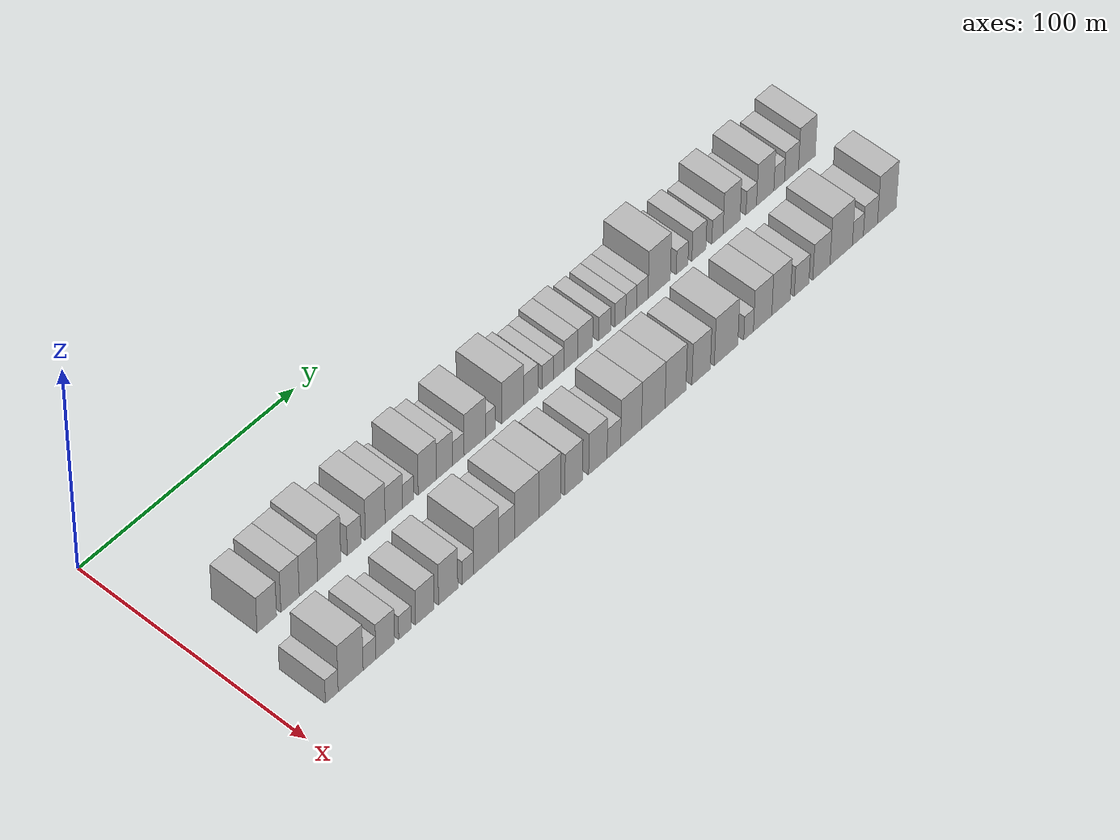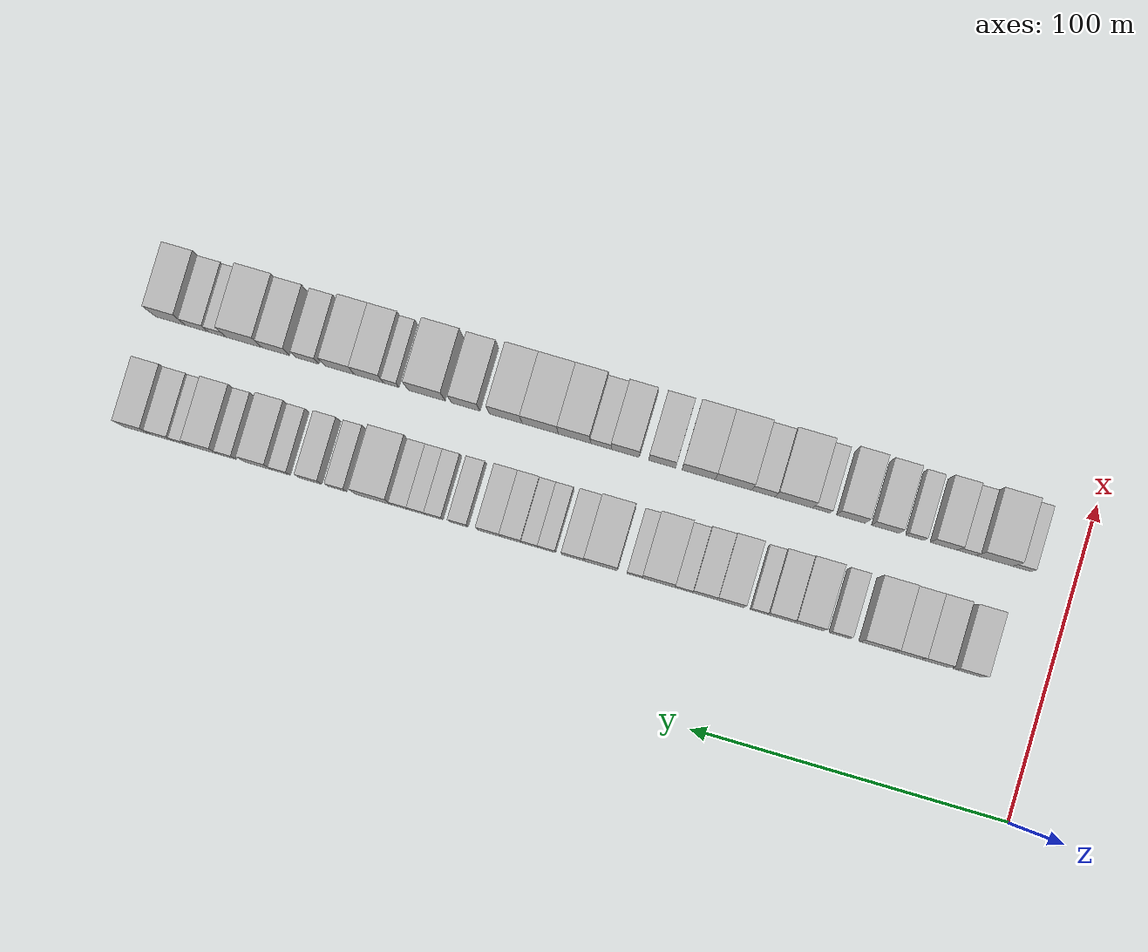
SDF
<sdf version="1.6">
 <world name="default">
  <model name="building_31">
   <static>1</static>
   <pose>50.0000 24.1749 0 0.000000 0.000000 0.000000</pose>
   <link name="link">
    <pose>0 0 9.00 0 0 0</pose>
    <collision name="collision"><geometry><box><size>20.0000 8.9537 18.0000</size></box></geometry></collision>
    <visual name="visual">
     <cast_shadows>0</cast_shadows>
     <geometry><box><size>20.0000 8.9537 18.0000</size></box></geometry>
     <material>
      <script>
       <uri>model://HANNAS_wall/materials/scripts</uri>
       <uri>model://HANNAS_wall/materials/textures</uri>
       <name>vrc/HANNAS_wall</name>
      </script>
     </material>
    </visual>
   </link>
  </model>
  <model name="building_32">
   <static>1</static>
   <pose>50.0000 34.8956 0 0.000000 0.000000 0.000000</pose>
   <link name="link">
    <pose>0 0 10.50 0 0 0</pose>
    <collision name="collision"><geometry><box><size>20.0000 8.4877 21.0000</size></box></geometry></collision>
    <visual name="visual">
     <cast_shadows>0</cast_shadows>
     <geometry><box><size>20.0000 8.4877 21.0000</size></box></geometry>
     <material>
      <script>
       <uri>model://HANNAS_wall/materials/scripts</uri>
       <uri>model://HANNAS_wall/materials/textures</uri>
       <name>vrc/HANNAS_wall</name>
      </script>
     </material>
    </visual>
   </link>
  </model>
  <model name="building_33">
   <static>1</static>
   <pose>50.0000 43.4149 0 0.000000 0.000000 0.000000</pose>
   <link name="link">
    <pose>0 0 10.50 0 0 0</pose>
    <collision name="collision"><geometry><box><size>20.0000 8.5508 21.0000</size></box></geometry></collision>
    <visual name="visual">
     <cast_shadows>0</cast_shadows>
     <geometry><box><size>20.0000 8.5508 21.0000</size></box></geometry>
     <material>
      <script>
       <uri>model://HANNAS_wall/materials/scripts</uri>
       <uri>model://HANNAS_wall/materials/textures</uri>
       <name>vrc/HANNAS_wall</name>
      </script>
     </material>
    </visual>
   </link>
  </model>
  <model name="building_34">
   <static>1</static>
   <pose>50.0000 53.0832 0 0.000000 0.000000 0.000000</pose>
   <link name="link">
    <pose>0 0 12.00 0 0 0</pose>
    <collision name="collision"><geometry><box><size>20.0000 10.7860 24.0000</size></box></geometry></collision>
    <visual name="visual">
     <cast_shadows>0</cast_shadows>
     <geometry><box><size>20.0000 10.7860 24.0000</size></box></geometry>
     <material>
      <script>
       <uri>model://HANNAS_wall/materials/scripts</uri>
       <uri>model://HANNAS_wall/materials/textures</uri>
       <name>vrc/HANNAS_wall</name>
      </script>
     </material>
    </visual>
   </link>
  </model>
  <model name="building_35">
   <static>1</static>
   <pose>50.0000 64.6992 0 0.000000 0.000000 0.000000</pose>
   <link name="link">
    <pose>0 0 7.50 0 0 0</pose>
    <collision name="collision"><geometry><box><size>20.0000 6.4458 15.0000</size></box></geometry></collision>
    <visual name="visual">
     <cast_shadows>0</cast_shadows>
     <geometry><box><size>20.0000 6.4458 15.0000</size></box></geometry>
     <material>
      <script>
       <uri>model://HANNAS_wall/materials/scripts</uri>
       <uri>model://HANNAS_wall/materials/textures</uri>
       <name>vrc/HANNAS_wall</name>
      </script>
     </material>
    </visual>
   </link>
  </model>
  <model name="building_36">
   <static>1</static>
   <pose>50.0000 74.5765 0 0.000000 0.000000 0.000000</pose>
   <link name="link">
    <pose>0 0 10.50 0 0 0</pose>
    <collision name="collision"><geometry><box><size>20.0000 9.3089 21.0000</size></box></geometry></collision>
    <visual name="visual">
     <cast_shadows>0</cast_shadows>
     <geometry><box><size>20.0000 9.3089 21.0000</size></box></geometry>
     <material>
      <script>
       <uri>model://HANNAS_wall/materials/scripts</uri>
       <uri>model://HANNAS_wall/materials/textures</uri>
       <name>vrc/HANNAS_wall</name>
      </script>
     </material>
    </visual>
   </link>
  </model>
  <model name="building_37">
   <static>1</static>
   <pose>50.0000 83.3503 0 0.000000 0.000000 0.000000</pose>
   <link name="link">
    <pose>0 0 9.00 0 0 0</pose>
    <collision name="collision"><geometry><box><size>20.0000 8.2386 18.0000</size></box></geometry></collision>
    <visual name="visual">
     <cast_shadows>0</cast_shadows>
     <geometry><box><size>20.0000 8.2386 18.0000</size></box></geometry>
     <material>
      <script>
       <uri>model://HANNAS_wall/materials/scripts</uri>
       <uri>model://HANNAS_wall/materials/textures</uri>
       <name>vrc/HANNAS_wall</name>
      </script>
     </material>
    </visual>
   </link>
  </model>
  <model name="building_38">
   <static>1</static>
   <pose>50.0000 90.1507 0 0.000000 0.000000 0.000000</pose>
   <link name="link">
    <pose>0 0 6.00 0 0 0</pose>
    <collision name="collision"><geometry><box><size>20.0000 5.3623 12.0000</size></box></geometry></collision>
    <visual name="visual">
     <cast_shadows>0</cast_shadows>
     <geometry><box><size>20.0000 5.3623 12.0000</size></box></geometry>
     <material>
      <script>
       <uri>model://HANNAS_wall/materials/scripts</uri>
       <uri>model://HANNAS_wall/materials/textures</uri>
       <name>vrc/HANNAS_wall</name>
      </script>
     </material>
    </visual>
   </link>
  </model>
  <model name="building_39">
   <static>1</static>
   <pose>50.0000 99.1289 0 0.000000 0.000000 0.000000</pose>
   <link name="link">
    <pose>0 0 10.50 0 0 0</pose>
    <collision name="collision"><geometry><box><size>20.0000 8.5942 21.0000</size></box></geometry></collision>
    <visual name="visual">
     <cast_shadows>0</cast_shadows>
     <geometry><box><size>20.0000 8.5942 21.0000</size></box></geometry>
     <material>
      <script>
       <uri>model://HANNAS_wall/materials/scripts</uri>
       <uri>model://HANNAS_wall/materials/textures</uri>
       <name>vrc/HANNAS_wall</name>
      </script>
     </material>
    </visual>
   </link>
  </model>
  <model name="building_40">
   <static>1</static>
   <pose>50.0000 107.2509 0 0.000000 0.000000 0.000000</pose>
   <link name="link">
    <pose>0 0 9.00 0 0 0</pose>
    <collision name="collision"><geometry><box><size>20.0000 7.6497 18.0000</size></box></geometry></collision>
    <visual name="visual">
     <cast_shadows>0</cast_shadows>
     <geometry><box><size>20.0000 7.6497 18.0000</size></box></geometry>
     <material>
      <script>
       <uri>model://HANNAS_wall/materials/scripts</uri>
       <uri>model://HANNAS_wall/materials/textures</uri>
       <name>vrc/HANNAS_wall</name>
      </script>
     </material>
    </visual>
   </link>
  </model>
  <model name="building_41">
   <static>1</static>
   <pose>50.0000 113.9115 0 0.000000 0.000000 0.000000</pose>
   <link name="link">
    <pose>0 0 6.00 0 0 0</pose>
    <collision name="collision"><geometry><box><size>20.0000 5.6714 12.0000</size></box></geometry></collision>
    <visual name="visual">
     <cast_shadows>0</cast_shadows>
     <geometry><box><size>20.0000 5.6714 12.0000</size></box></geometry>
     <material>
      <script>
       <uri>model://HANNAS_wall/materials/scripts</uri>
       <uri>model://HANNAS_wall/materials/textures</uri>
       <name>vrc/HANNAS_wall</name>
      </script>
     </material>
    </visual>
   </link>
  </model>
  <model name="building_42">
   <static>1</static>
   <pose>50.0000 121.8345 0 0.000000 0.000000 0.000000</pose>
   <link name="link">
    <pose>0 0 10.50 0 0 0</pose>
    <collision name="collision"><geometry><box><size>20.0000 10.1746 21.0000</size></box></geometry></collision>
    <visual name="visual">
     <cast_shadows>0</cast_shadows>
     <geometry><box><size>20.0000 10.1746 21.0000</size></box></geometry>
     <material>
      <script>
       <uri>model://HANNAS_wall/materials/scripts</uri>
       <uri>model://HANNAS_wall/materials/textures</uri>
       <name>vrc/HANNAS_wall</name>
      </script>
     </material>
    </visual>
   </link>
  </model>
  <model name="building_43">
   <static>1</static>
   <pose>50.0000 129.3397 0 0.000000 0.000000 0.000000</pose>
   <link name="link">
    <pose>0 0 6.00 0 0 0</pose>
    <collision name="collision"><geometry><box><size>20.0000 4.8359 12.0000</size></box></geometry></collision>
    <visual name="visual">
     <cast_shadows>0</cast_shadows>
     <geometry><box><size>20.0000 4.8359 12.0000</size></box></geometry>
     <material>
      <script>
       <uri>model://HANNAS_wall/materials/scripts</uri>
       <uri>model://HANNAS_wall/materials/textures</uri>
       <name>vrc/HANNAS_wall</name>
      </script>
     </material>
    </visual>
   </link>
  </model>
  <model name="building_44">
   <static>1</static>
   <pose>50.0000 139.9928 0 0.000000 0.000000 0.000000</pose>
   <link name="link">
    <pose>0 0 10.50 0 0 0</pose>
    <collision name="collision"><geometry><box><size>20.0000 10.4704 21.0000</size></box></geometry></collision>
    <visual name="visual">
     <cast_shadows>0</cast_shadows>
     <geometry><box><size>20.0000 10.4704 21.0000</size></box></geometry>
     <material>
      <script>
       <uri>model://HANNAS_wall/materials/scripts</uri>
       <uri>model://HANNAS_wall/materials/textures</uri>
       <name>vrc/HANNAS_wall</name>
      </script>
     </material>
    </visual>
   </link>
  </model>
  <model name="building_45">
   <static>1</static>
   <pose>50.0000 148.7830 0 0.000000 0.000000 0.000000</pose>
   <link name="link">
    <pose>0 0 7.50 0 0 0</pose>
    <collision name="collision"><geometry><box><size>20.0000 7.1100 15.0000</size></box></geometry></collision>
    <visual name="visual">
     <cast_shadows>0</cast_shadows>
     <geometry><box><size>20.0000 7.1100 15.0000</size></box></geometry>
     <material>
      <script>
       <uri>model://HANNAS_wall/materials/scripts</uri>
       <uri>model://HANNAS_wall/materials/textures</uri>
       <name>vrc/HANNAS_wall</name>
      </script>
     </material>
    </visual>
   </link>
  </model>
  <model name="building_46">
   <static>1</static>
   <pose>50.0000 157.1100 0 0.000000 0.000000 0.000000</pose>
   <link name="link">
    <pose>0 0 6.00 0 0 0</pose>
    <collision name="collision"><geometry><box><size>20.0000 5.5440 12.0000</size></box></geometry></collision>
    <visual name="visual">
     <cast_shadows>0</cast_shadows>
     <geometry><box><size>20.0000 5.5440 12.0000</size></box></geometry>
     <material>
      <script>
       <uri>model://HANNAS_wall/materials/scripts</uri>
       <uri>model://HANNAS_wall/materials/textures</uri>
       <name>vrc/HANNAS_wall</name>
      </script>
     </material>
    </visual>
   </link>
  </model>
  <model name="building_47">
   <static>1</static>
   <pose>50.0000 162.4199 0 0.000000 0.000000 0.000000</pose>
   <link name="link">
    <pose>0 0 6.00 0 0 0</pose>
    <collision name="collision"><geometry><box><size>20.0000 5.0758 12.0000</size></box></geometry></collision>
    <visual name="visual">
     <cast_shadows>0</cast_shadows>
     <geometry><box><size>20.0000 5.0758 12.0000</size></box></geometry>
     <material>
      <script>
       <uri>model://HANNAS_wall/materials/scripts</uri>
       <uri>model://HANNAS_wall/materials/textures</uri>
       <name>vrc/HANNAS_wall</name>
      </script>
     </material>
    </visual>
   </link>
  </model>
  <model name="building_48">
   <static>1</static>
   <pose>50.0000 168.3564 0 0.000000 0.000000 0.000000</pose>
   <link name="link">
    <pose>0 0 7.50 0 0 0</pose>
    <collision name="collision"><geometry><box><size>20.0000 6.7971 15.0000</size></box></geometry></collision>
    <visual name="visual">
     <cast_shadows>0</cast_shadows>
     <geometry><box><size>20.0000 6.7971 15.0000</size></box></geometry>
     <material>
      <script>
       <uri>model://HANNAS_wall/materials/scripts</uri>
       <uri>model://HANNAS_wall/materials/textures</uri>
       <name>vrc/HANNAS_wall</name>
      </script>
     </material>
    </visual>
   </link>
  </model>
  <model name="building_49">
   <static>1</static>
   <pose>50.0000 175.4226 0 0.000000 0.000000 0.000000</pose>
   <link name="link">
    <pose>0 0 7.50 0 0 0</pose>
    <collision name="collision"><geometry><box><size>20.0000 7.3352 15.0000</size></box></geometry></collision>
    <visual name="visual">
     <cast_shadows>0</cast_shadows>
     <geometry><box><size>20.0000 7.3352 15.0000</size></box></geometry>
     <material>
      <script>
       <uri>model://HANNAS_wall/materials/scripts</uri>
       <uri>model://HANNAS_wall/materials/textures</uri>
       <name>vrc/HANNAS_wall</name>
      </script>
     </material>
    </visual>
   </link>
  </model>
  <model name="building_50">
   <static>1</static>
   <pose>50.0000 185.0558 0 0.000000 0.000000 0.000000</pose>
   <link name="link">
    <pose>0 0 6.00 0 0 0</pose>
    <collision name="collision"><geometry><box><size>20.0000 5.9312 12.0000</size></box></geometry></collision>
    <visual name="visual">
     <cast_shadows>0</cast_shadows>
     <geometry><box><size>20.0000 5.9312 12.0000</size></box></geometry>
     <material>
      <script>
       <uri>model://HANNAS_wall/materials/scripts</uri>
       <uri>model://HANNAS_wall/materials/textures</uri>
       <name>vrc/HANNAS_wall</name>
      </script>
     </material>
    </visual>
   </link>
  </model>
  <model name="building_51">
   <static>1</static>
   <pose>50.0000 192.7203 0 0.000000 0.000000 0.000000</pose>
   <link name="link">
    <pose>0 0 6.00 0 0 0</pose>
    <collision name="collision"><geometry><box><size>20.0000 5.3978 12.0000</size></box></geometry></collision>
    <visual name="visual">
     <cast_shadows>0</cast_shadows>
     <geometry><box><size>20.0000 5.3978 12.0000</size></box></geometry>
     <material>
      <script>
       <uri>model://HANNAS_wall/materials/scripts</uri>
       <uri>model://HANNAS_wall/materials/textures</uri>
       <name>vrc/HANNAS_wall</name>
      </script>
     </material>
    </visual>
   </link>
  </model>
  <model name="building_52">
   <static>1</static>
   <pose>50.0000 198.1457 0 0.000000 0.000000 0.000000</pose>
   <link name="link">
    <pose>0 0 6.00 0 0 0</pose>
    <collision name="collision"><geometry><box><size>20.0000 5.4532 12.0000</size></box></geometry></collision>
    <visual name="visual">
     <cast_shadows>0</cast_shadows>
     <geometry><box><size>20.0000 5.4532 12.0000</size></box></geometry>
     <material>
      <script>
       <uri>model://HANNAS_wall/materials/scripts</uri>
       <uri>model://HANNAS_wall/materials/textures</uri>
       <name>vrc/HANNAS_wall</name>
      </script>
     </material>
    </visual>
   </link>
  </model>
  <model name="building_53">
   <static>1</static>
   <pose>50.0000 203.6819 0 0.000000 0.000000 0.000000</pose>
   <link name="link">
    <pose>0 0 6.00 0 0 0</pose>
    <collision name="collision"><geometry><box><size>20.0000 5.6191 12.0000</size></box></geometry></collision>
    <visual name="visual">
     <cast_shadows>0</cast_shadows>
     <geometry><box><size>20.0000 5.6191 12.0000</size></box></geometry>
     <material>
      <script>
       <uri>model://HANNAS_wall/materials/scripts</uri>
       <uri>model://HANNAS_wall/materials/textures</uri>
       <name>vrc/HANNAS_wall</name>
      </script>
     </material>
    </visual>
   </link>
  </model>
  <model name="building_54">
   <static>1</static>
   <pose>50.0000 212.0614 0 0.000000 0.000000 0.000000</pose>
   <link name="link">
    <pose>0 0 12.00 0 0 0</pose>
    <collision name="collision"><geometry><box><size>20.0000 11.1399 24.0000</size></box></geometry></collision>
    <visual name="visual">
     <cast_shadows>0</cast_shadows>
     <geometry><box><size>20.0000 11.1399 24.0000</size></box></geometry>
     <material>
      <script>
       <uri>model://HANNAS_wall/materials/scripts</uri>
       <uri>model://HANNAS_wall/materials/textures</uri>
       <name>vrc/HANNAS_wall</name>
      </script>
     </material>
    </visual>
   </link>
  </model>
  <model name="building_55">
   <static>1</static>
   <pose>50.0000 223.5613 0 0.000000 0.000000 0.000000</pose>
   <link name="link">
    <pose>0 0 6.00 0 0 0</pose>
    <collision name="collision"><geometry><box><size>20.0000 5.8598 12.0000</size></box></geometry></collision>
    <visual name="visual">
     <cast_shadows>0</cast_shadows>
     <geometry><box><size>20.0000 5.8598 12.0000</size></box></geometry>
     <material>
      <script>
       <uri>model://HANNAS_wall/materials/scripts</uri>
       <uri>model://HANNAS_wall/materials/textures</uri>
       <name>vrc/HANNAS_wall</name>
      </script>
     </material>
    </visual>
   </link>
  </model>
  <model name="building_56">
   <static>1</static>
   <pose>50.0000 232.0215 0 0.000000 0.000000 0.000000</pose>
   <link name="link">
    <pose>0 0 7.50 0 0 0</pose>
    <collision name="collision"><geometry><box><size>20.0000 7.0606 15.0000</size></box></geometry></collision>
    <visual name="visual">
     <cast_shadows>0</cast_shadows>
     <geometry><box><size>20.0000 7.0606 15.0000</size></box></geometry>
     <material>
      <script>
       <uri>model://HANNAS_wall/materials/scripts</uri>
       <uri>model://HANNAS_wall/materials/textures</uri>
       <name>vrc/HANNAS_wall</name>
      </script>
     </material>
    </visual>
   </link>
  </model>
  <model name="building_57">
   <static>1</static>
   <pose>50.0000 241.3652 0 0.000000 0.000000 0.000000</pose>
   <link name="link">
    <pose>0 0 6.00 0 0 0</pose>
    <collision name="collision"><geometry><box><size>20.0000 5.6268 12.0000</size></box></geometry></collision>
    <visual name="visual">
     <cast_shadows>0</cast_shadows>
     <geometry><box><size>20.0000 5.6268 12.0000</size></box></geometry>
     <material>
      <script>
       <uri>model://HANNAS_wall/materials/scripts</uri>
       <uri>model://HANNAS_wall/materials/textures</uri>
       <name>vrc/HANNAS_wall</name>
      </script>
     </material>
    </visual>
   </link>
  </model>
  <model name="building_58">
   <static>1</static>
   <pose>50.0000 248.5094 0 0.000000 0.000000 0.000000</pose>
   <link name="link">
    <pose>0 0 10.50 0 0 0</pose>
    <collision name="collision"><geometry><box><size>20.0000 8.6616 21.0000</size></box></geometry></collision>
    <visual name="visual">
     <cast_shadows>0</cast_shadows>
     <geometry><box><size>20.0000 8.6616 21.0000</size></box></geometry>
     <material>
      <script>
       <uri>model://HANNAS_wall/materials/scripts</uri>
       <uri>model://HANNAS_wall/materials/textures</uri>
       <name>vrc/HANNAS_wall</name>
      </script>
     </material>
    </visual>
   </link>
  </model>
  <model name="building_59">
   <static>1</static>
   <pose>50.0000 258.5315 0 0.000000 0.000000 0.000000</pose>
   <link name="link">
    <pose>0 0 6.00 0 0 0</pose>
    <collision name="collision"><geometry><box><size>20.0000 5.3826 12.0000</size></box></geometry></collision>
    <visual name="visual">
     <cast_shadows>0</cast_shadows>
     <geometry><box><size>20.0000 5.3826 12.0000</size></box></geometry>
     <material>
      <script>
       <uri>model://HANNAS_wall/materials/scripts</uri>
       <uri>model://HANNAS_wall/materials/textures</uri>
       <name>vrc/HANNAS_wall</name>
      </script>
     </material>
    </visual>
   </link>
  </model>
  <model name="building_60">
   <static>1</static>
   <pose>50.0000 265.6343 0 0.000000 0.000000 0.000000</pose>
   <link name="link">
    <pose>0 0 10.50 0 0 0</pose>
    <collision name="collision"><geometry><box><size>20.0000 8.8230 21.0000</size></box></geometry></collision>
    <visual name="visual">
     <cast_shadows>0</cast_shadows>
     <geometry><box><size>20.0000 8.8230 21.0000</size></box></geometry>
     <material>
      <script>
       <uri>model://HANNAS_wall/materials/scripts</uri>
       <uri>model://HANNAS_wall/materials/textures</uri>
       <name>vrc/HANNAS_wall</name>
      </script>
     </material>
    </visual>
   </link>
  </model>
  <model name="building_61">
   <static>1</static>
   <pose>50.0000 272.7663 0 0.000000 0.000000 0.000000</pose>
   <link name="link">
    <pose>0 0 6.00 0 0 0</pose>
    <collision name="collision"><geometry><box><size>20.0000 5.4410 12.0000</size></box></geometry></collision>
    <visual name="visual">
     <cast_shadows>0</cast_shadows>
     <geometry><box><size>20.0000 5.4410 12.0000</size></box></geometry>
     <material>
      <script>
       <uri>model://HANNAS_wall/materials/scripts</uri>
       <uri>model://HANNAS_wall/materials/textures</uri>
       <name>vrc/HANNAS_wall</name>
      </script>
     </material>
    </visual>
   </link>
  </model>
  <model name="building_62">
   <static>1</static>
   <pose>50.0000 279.0980 0 0.000000 0.000000 0.000000</pose>
   <link name="link">
    <pose>0 0 7.50 0 0 0</pose>
    <collision name="collision"><geometry><box><size>20.0000 7.2223 15.0000</size></box></geometry></collision>
    <visual name="visual">
     <cast_shadows>0</cast_shadows>
     <geometry><box><size>20.0000 7.2223 15.0000</size></box></geometry>
     <material>
      <script>
       <uri>model://HANNAS_wall/materials/scripts</uri>
       <uri>model://HANNAS_wall/materials/textures</uri>
       <name>vrc/HANNAS_wall</name>
      </script>
     </material>
    </visual>
   </link>
  </model>
  <model name="building_63">
   <static>1</static>
   <pose>50.0000 287.0207 0 0.000000 0.000000 0.000000</pose>
   <link name="link">
    <pose>0 0 10.50 0 0 0</pose>
    <collision name="collision"><geometry><box><size>20.0000 8.6232 21.0000</size></box></geometry></collision>
    <visual name="visual">
     <cast_shadows>0</cast_shadows>
     <geometry><box><size>20.0000 8.6232 21.0000</size></box></geometry>
     <material>
      <script>
       <uri>model://HANNAS_wall/materials/scripts</uri>
       <uri>model://HANNAS_wall/materials/textures</uri>
       <name>vrc/HANNAS_wall</name>
      </script>
     </material>
    </visual>
   </link>
  </model>
  <model name="building_95">
   <static>1</static>
   <pose>85.0000 17.0152 0 0.000000 0.000000 0.000000</pose>
   <link name="link">
    <pose>0 0 6.00 0 0 0</pose>
    <collision name="collision"><geometry><box><size>20.0000 5.8440 12.0000</size></box></geometry></collision>
    <visual name="visual">
     <cast_shadows>0</cast_shadows>
     <geometry><box><size>20.0000 5.8440 12.0000</size></box></geometry>
     <material>
      <script>
       <uri>model://HANNAS_wall/materials/scripts</uri>
       <uri>model://HANNAS_wall/materials/textures</uri>
       <name>vrc/HANNAS_wall</name>
      </script>
     </material>
    </visual>
   </link>
  </model>
  <model name="building_96">
   <static>1</static>
   <pose>85.0000 25.6860 0 0.000000 0.000000 0.000000</pose>
   <link name="link">
    <pose>0 0 12.00 0 0 0</pose>
    <collision name="collision"><geometry><box><size>20.0000 11.4977 24.0000</size></box></geometry></collision>
    <visual name="visual">
     <cast_shadows>0</cast_shadows>
     <geometry><box><size>20.0000 11.4977 24.0000</size></box></geometry>
     <material>
      <script>
       <uri>model://HANNAS_wall/materials/scripts</uri>
       <uri>model://HANNAS_wall/materials/textures</uri>
       <name>vrc/HANNAS_wall</name>
      </script>
     </material>
    </visual>
   </link>
  </model>
  <model name="building_97">
   <static>1</static>
   <pose>85.0000 34.3804 0 0.000000 0.000000 0.000000</pose>
   <link name="link">
    <pose>0 0 6.00 0 0 0</pose>
    <collision name="collision"><geometry><box><size>20.0000 5.8911 12.0000</size></box></geometry></collision>
    <visual name="visual">
     <cast_shadows>0</cast_shadows>
     <geometry><box><size>20.0000 5.8911 12.0000</size></box></geometry>
     <material>
      <script>
       <uri>model://HANNAS_wall/materials/scripts</uri>
       <uri>model://HANNAS_wall/materials/textures</uri>
       <name>vrc/HANNAS_wall</name>
      </script>
     </material>
    </visual>
   </link>
  </model>
  <model name="building_98">
   <static>1</static>
   <pose>85.0000 41.6361 0 0.000000 0.000000 0.000000</pose>
   <link name="link">
    <pose>0 0 9.00 0 0 0</pose>
    <collision name="collision"><geometry><box><size>20.0000 8.6202 18.0000</size></box></geometry></collision>
    <visual name="visual">
     <cast_shadows>0</cast_shadows>
     <geometry><box><size>20.0000 8.6202 18.0000</size></box></geometry>
     <material>
      <script>
       <uri>model://HANNAS_wall/materials/scripts</uri>
       <uri>model://HANNAS_wall/materials/textures</uri>
       <name>vrc/HANNAS_wall</name>
      </script>
     </material>
    </visual>
   </link>
  </model>
  <model name="building_99">
   <static>1</static>
   <pose>85.0000 50.8446 0 0.000000 0.000000 0.000000</pose>
   <link name="link">
    <pose>0 0 6.00 0 0 0</pose>
    <collision name="collision"><geometry><box><size>20.0000 5.7968 12.0000</size></box></geometry></collision>
    <visual name="visual">
     <cast_shadows>0</cast_shadows>
     <geometry><box><size>20.0000 5.7968 12.0000</size></box></geometry>
     <material>
      <script>
       <uri>model://HANNAS_wall/materials/scripts</uri>
       <uri>model://HANNAS_wall/materials/textures</uri>
       <name>vrc/HANNAS_wall</name>
      </script>
     </material>
    </visual>
   </link>
  </model>
  <model name="building_100">
   <static>1</static>
   <pose>85.0000 60.1176 0 0.000000 0.000000 0.000000</pose>
   <link name="link">
    <pose>0 0 9.00 0 0 0</pose>
    <collision name="collision"><geometry><box><size>20.0000 8.7491 18.0000</size></box></geometry></collision>
    <visual name="visual">
     <cast_shadows>0</cast_shadows>
     <geometry><box><size>20.0000 8.7491 18.0000</size></box></geometry>
     <material>
      <script>
       <uri>model://HANNAS_wall/materials/scripts</uri>
       <uri>model://HANNAS_wall/materials/textures</uri>
       <name>vrc/HANNAS_wall</name>
      </script>
     </material>
    </visual>
   </link>
  </model>
  <model name="building_101">
   <static>1</static>
   <pose>85.0000 71.0242 0 0.000000 0.000000 0.000000</pose>
   <link name="link">
    <pose>0 0 10.50 0 0 0</pose>
    <collision name="collision"><geometry><box><size>20.0000 9.0641 21.0000</size></box></geometry></collision>
    <visual name="visual">
     <cast_shadows>0</cast_shadows>
     <geometry><box><size>20.0000 9.0641 21.0000</size></box></geometry>
     <material>
      <script>
       <uri>model://HANNAS_wall/materials/scripts</uri>
       <uri>model://HANNAS_wall/materials/textures</uri>
       <name>vrc/HANNAS_wall</name>
      </script>
     </material>
    </visual>
   </link>
  </model>
  <model name="building_102">
   <static>1</static>
   <pose>85.0000 80.3295 0 0.000000 0.000000 0.000000</pose>
   <link name="link">
    <pose>0 0 6.00 0 0 0</pose>
    <collision name="collision"><geometry><box><size>20.0000 5.5464 12.0000</size></box></geometry></collision>
    <visual name="visual">
     <cast_shadows>0</cast_shadows>
     <geometry><box><size>20.0000 5.5464 12.0000</size></box></geometry>
     <material>
      <script>
       <uri>model://HANNAS_wall/materials/scripts</uri>
       <uri>model://HANNAS_wall/materials/textures</uri>
       <name>vrc/HANNAS_wall</name>
      </script>
     </material>
    </visual>
   </link>
  </model>
  <model name="building_103">
   <static>1</static>
   <pose>85.0000 89.0241 0 0.000000 0.000000 0.000000</pose>
   <link name="link">
    <pose>0 0 12.00 0 0 0</pose>
    <collision name="collision"><geometry><box><size>20.0000 11.8429 24.0000</size></box></geometry></collision>
    <visual name="visual">
     <cast_shadows>0</cast_shadows>
     <geometry><box><size>20.0000 11.8429 24.0000</size></box></geometry>
     <material>
      <script>
       <uri>model://HANNAS_wall/materials/scripts</uri>
       <uri>model://HANNAS_wall/materials/textures</uri>
       <name>vrc/HANNAS_wall</name>
      </script>
     </material>
    </visual>
   </link>
  </model>
  <model name="building_104">
   <static>1</static>
   <pose>85.0000 98.6725 0 0.000000 0.000000 0.000000</pose>
   <link name="link">
    <pose>0 0 9.00 0 0 0</pose>
    <collision name="collision"><geometry><box><size>20.0000 7.4538 18.0000</size></box></geometry></collision>
    <visual name="visual">
     <cast_shadows>0</cast_shadows>
     <geometry><box><size>20.0000 7.4538 18.0000</size></box></geometry>
     <material>
      <script>
       <uri>model://HANNAS_wall/materials/scripts</uri>
       <uri>model://HANNAS_wall/materials/textures</uri>
       <name>vrc/HANNAS_wall</name>
      </script>
     </material>
    </visual>
   </link>
  </model>
  <model name="building_105">
   <static>1</static>
   <pose>85.0000 108.2102 0 0.000000 0.000000 0.000000</pose>
   <link name="link">
    <pose>0 0 12.00 0 0 0</pose>
    <collision name="collision"><geometry><box><size>20.0000 11.6215 24.0000</size></box></geometry></collision>
    <visual name="visual">
     <cast_shadows>0</cast_shadows>
     <geometry><box><size>20.0000 11.6215 24.0000</size></box></geometry>
     <material>
      <script>
       <uri>model://HANNAS_wall/materials/scripts</uri>
       <uri>model://HANNAS_wall/materials/textures</uri>
       <name>vrc/HANNAS_wall</name>
      </script>
     </material>
    </visual>
   </link>
  </model>
  <model name="building_106">
   <static>1</static>
   <pose>85.0000 119.2856 0 0.000000 0.000000 0.000000</pose>
   <link name="link">
    <pose>0 0 12.00 0 0 0</pose>
    <collision name="collision"><geometry><box><size>20.0000 10.5293 24.0000</size></box></geometry></collision>
    <visual name="visual">
     <cast_shadows>0</cast_shadows>
     <geometry><box><size>20.0000 10.5293 24.0000</size></box></geometry>
     <material>
      <script>
       <uri>model://HANNAS_wall/materials/scripts</uri>
       <uri>model://HANNAS_wall/materials/textures</uri>
       <name>vrc/HANNAS_wall</name>
      </script>
     </material>
    </visual>
   </link>
  </model>
  <model name="building_107">
   <static>1</static>
   <pose>85.0000 130.7940 0 0.000000 0.000000 0.000000</pose>
   <link name="link">
    <pose>0 0 10.50 0 0 0</pose>
    <collision name="collision"><geometry><box><size>20.0000 8.4874 21.0000</size></box></geometry></collision>
    <visual name="visual">
     <cast_shadows>0</cast_shadows>
     <geometry><box><size>20.0000 8.4874 21.0000</size></box></geometry>
     <material>
      <script>
       <uri>model://HANNAS_wall/materials/scripts</uri>
       <uri>model://HANNAS_wall/materials/textures</uri>
       <name>vrc/HANNAS_wall</name>
      </script>
     </material>
    </visual>
   </link>
  </model>
  <model name="building_108">
   <static>1</static>
   <pose>85.0000 142.4919 0 0.000000 0.000000 0.000000</pose>
   <link name="link">
    <pose>0 0 10.50 0 0 0</pose>
    <collision name="collision"><geometry><box><size>20.0000 8.9084 21.0000</size></box></geometry></collision>
    <visual name="visual">
     <cast_shadows>0</cast_shadows>
     <geometry><box><size>20.0000 8.9084 21.0000</size></box></geometry>
     <material>
      <script>
       <uri>model://HANNAS_wall/materials/scripts</uri>
       <uri>model://HANNAS_wall/materials/textures</uri>
       <name>vrc/HANNAS_wall</name>
      </script>
     </material>
    </visual>
   </link>
  </model>
  <model name="building_109">
   <static>1</static>
   <pose>85.0000 150.2600 0 0.000000 0.000000 0.000000</pose>
   <link name="link">
    <pose>0 0 7.50 0 0 0</pose>
    <collision name="collision"><geometry><box><size>20.0000 6.6278 15.0000</size></box></geometry></collision>
    <visual name="visual">
     <cast_shadows>0</cast_shadows>
     <geometry><box><size>20.0000 6.6278 15.0000</size></box></geometry>
     <material>
      <script>
       <uri>model://HANNAS_wall/materials/scripts</uri>
       <uri>model://HANNAS_wall/materials/textures</uri>
       <name>vrc/HANNAS_wall</name>
      </script>
     </material>
    </visual>
   </link>
  </model>
  <model name="building_110">
   <static>1</static>
   <pose>85.0000 158.6706 0 0.000000 0.000000 0.000000</pose>
   <link name="link">
    <pose>0 0 12.00 0 0 0</pose>
    <collision name="collision"><geometry><box><size>20.0000 10.1933 24.0000</size></box></geometry></collision>
    <visual name="visual">
     <cast_shadows>0</cast_shadows>
     <geometry><box><size>20.0000 10.1933 24.0000</size></box></geometry>
     <material>
      <script>
       <uri>model://HANNAS_wall/materials/scripts</uri>
       <uri>model://HANNAS_wall/materials/textures</uri>
       <name>vrc/HANNAS_wall</name>
      </script>
     </material>
    </visual>
   </link>
  </model>
  <model name="building_111">
   <static>1</static>
   <pose>85.0000 169.5220 0 0.000000 0.000000 0.000000</pose>
   <link name="link">
    <pose>0 0 12.00 0 0 0</pose>
    <collision name="collision"><geometry><box><size>20.0000 11.5095 24.0000</size></box></geometry></collision>
    <visual name="visual">
     <cast_shadows>0</cast_shadows>
     <geometry><box><size>20.0000 11.5095 24.0000</size></box></geometry>
     <material>
      <script>
       <uri>model://HANNAS_wall/materials/scripts</uri>
       <uri>model://HANNAS_wall/materials/textures</uri>
       <name>vrc/HANNAS_wall</name>
      </script>
     </material>
    </visual>
   </link>
  </model>
  <model name="building_112">
   <static>1</static>
   <pose>85.0000 180.4535 0 0.000000 0.000000 0.000000</pose>
   <link name="link">
    <pose>0 0 12.00 0 0 0</pose>
    <collision name="collision"><geometry><box><size>20.0000 10.3535 24.0000</size></box></geometry></collision>
    <visual name="visual">
     <cast_shadows>0</cast_shadows>
     <geometry><box><size>20.0000 10.3535 24.0000</size></box></geometry>
     <material>
      <script>
       <uri>model://HANNAS_wall/materials/scripts</uri>
       <uri>model://HANNAS_wall/materials/textures</uri>
       <name>vrc/HANNAS_wall</name>
      </script>
     </material>
    </visual>
   </link>
  </model>
  <model name="building_113">
   <static>1</static>
   <pose>85.0000 193.1735 0 0.000000 0.000000 0.000000</pose>
   <link name="link">
    <pose>0 0 10.50 0 0 0</pose>
    <collision name="collision"><geometry><box><size>20.0000 9.0864 21.0000</size></box></geometry></collision>
    <visual name="visual">
     <cast_shadows>0</cast_shadows>
     <geometry><box><size>20.0000 9.0864 21.0000</size></box></geometry>
     <material>
      <script>
       <uri>model://HANNAS_wall/materials/scripts</uri>
       <uri>model://HANNAS_wall/materials/textures</uri>
       <name>vrc/HANNAS_wall</name>
      </script>
     </material>
    </visual>
   </link>
  </model>
  <model name="building_114">
   <static>1</static>
   <pose>85.0000 205.5724 0 0.000000 0.000000 0.000000</pose>
   <link name="link">
    <pose>0 0 12.00 0 0 0</pose>
    <collision name="collision"><geometry><box><size>20.0000 11.7115 24.0000</size></box></geometry></collision>
    <visual name="visual">
     <cast_shadows>0</cast_shadows>
     <geometry><box><size>20.0000 11.7115 24.0000</size></box></geometry>
     <material>
      <script>
       <uri>model://HANNAS_wall/materials/scripts</uri>
       <uri>model://HANNAS_wall/materials/textures</uri>
       <name>vrc/HANNAS_wall</name>
      </script>
     </material>
    </visual>
   </link>
  </model>
  <model name="building_115">
   <static>1</static>
   <pose>85.0000 216.8406 0 0.000000 0.000000 0.000000</pose>
   <link name="link">
    <pose>0 0 6.00 0 0 0</pose>
    <collision name="collision"><geometry><box><size>20.0000 4.8248 12.0000</size></box></geometry></collision>
    <visual name="visual">
     <cast_shadows>0</cast_shadows>
     <geometry><box><size>20.0000 4.8248 12.0000</size></box></geometry>
     <material>
      <script>
       <uri>model://HANNAS_wall/materials/scripts</uri>
       <uri>model://HANNAS_wall/materials/textures</uri>
       <name>vrc/HANNAS_wall</name>
      </script>
     </material>
    </visual>
   </link>
  </model>
  <model name="building_116">
   <static>1</static>
   <pose>85.0000 223.8652 0 0.000000 0.000000 0.000000</pose>
   <link name="link">
    <pose>0 0 10.50 0 0 0</pose>
    <collision name="collision"><geometry><box><size>20.0000 9.2245 21.0000</size></box></geometry></collision>
    <visual name="visual">
     <cast_shadows>0</cast_shadows>
     <geometry><box><size>20.0000 9.2245 21.0000</size></box></geometry>
     <material>
      <script>
       <uri>model://HANNAS_wall/materials/scripts</uri>
       <uri>model://HANNAS_wall/materials/textures</uri>
       <name>vrc/HANNAS_wall</name>
      </script>
     </material>
    </visual>
   </link>
  </model>
  <model name="building_117">
   <static>1</static>
   <pose>85.0000 233.1679 0 0.000000 0.000000 0.000000</pose>
   <link name="link">
    <pose>0 0 10.50 0 0 0</pose>
    <collision name="collision"><geometry><box><size>20.0000 9.3808 21.0000</size></box></geometry></collision>
    <visual name="visual">
     <cast_shadows>0</cast_shadows>
     <geometry><box><size>20.0000 9.3808 21.0000</size></box></geometry>
     <material>
      <script>
       <uri>model://HANNAS_wall/materials/scripts</uri>
       <uri>model://HANNAS_wall/materials/textures</uri>
       <name>vrc/HANNAS_wall</name>
      </script>
     </material>
    </visual>
   </link>
  </model>
  <model name="building_118">
   <static>1</static>
   <pose>85.0000 243.5555 0 0.000000 0.000000 0.000000</pose>
   <link name="link">
    <pose>0 0 7.50 0 0 0</pose>
    <collision name="collision"><geometry><box><size>20.0000 7.3945 15.0000</size></box></geometry></collision>
    <visual name="visual">
     <cast_shadows>0</cast_shadows>
     <geometry><box><size>20.0000 7.3945 15.0000</size></box></geometry>
     <material>
      <script>
       <uri>model://HANNAS_wall/materials/scripts</uri>
       <uri>model://HANNAS_wall/materials/textures</uri>
       <name>vrc/HANNAS_wall</name>
      </script>
     </material>
    </visual>
   </link>
  </model>
  <model name="building_119">
   <static>1</static>
   <pose>85.0000 253.6201 0 0.000000 0.000000 0.000000</pose>
   <link name="link">
    <pose>0 0 9.00 0 0 0</pose>
    <collision name="collision"><geometry><box><size>20.0000 8.7347 18.0000</size></box></geometry></collision>
    <visual name="visual">
     <cast_shadows>0</cast_shadows>
     <geometry><box><size>20.0000 8.7347 18.0000</size></box></geometry>
     <material>
      <script>
       <uri>model://HANNAS_wall/materials/scripts</uri>
       <uri>model://HANNAS_wall/materials/textures</uri>
       <name>vrc/HANNAS_wall</name>
      </script>
     </material>
    </visual>
   </link>
  </model>
  <model name="building_120">
   <static>1</static>
   <pose>85.0000 263.7091 0 0.000000 0.000000 0.000000</pose>
   <link name="link">
    <pose>0 0 12.00 0 0 0</pose>
    <collision name="collision"><geometry><box><size>20.0000 11.4433 24.0000</size></box></geometry></collision>
    <visual name="visual">
     <cast_shadows>0</cast_shadows>
     <geometry><box><size>20.0000 11.4433 24.0000</size></box></geometry>
     <material>
      <script>
       <uri>model://HANNAS_wall/materials/scripts</uri>
       <uri>model://HANNAS_wall/materials/textures</uri>
       <name>vrc/HANNAS_wall</name>
      </script>
     </material>
    </visual>
   </link>
  </model>
  <model name="building_121">
   <static>1</static>
   <pose>85.0000 272.2496 0 0.000000 0.000000 0.000000</pose>
   <link name="link">
    <pose>0 0 6.00 0 0 0</pose>
    <collision name="collision"><geometry><box><size>20.0000 5.6377 12.0000</size></box></geometry></collision>
    <visual name="visual">
     <cast_shadows>0</cast_shadows>
     <geometry><box><size>20.0000 5.6377 12.0000</size></box></geometry>
     <material>
      <script>
       <uri>model://HANNAS_wall/materials/scripts</uri>
       <uri>model://HANNAS_wall/materials/textures</uri>
       <name>vrc/HANNAS_wall</name>
      </script>
     </material>
    </visual>
   </link>
  </model>
  <model name="building_122">
   <static>1</static>
   <pose>85.0000 278.7009 0 0.000000 0.000000 0.000000</pose>
   <link name="link">
    <pose>0 0 7.50 0 0 0</pose>
    <collision name="collision"><geometry><box><size>20.0000 7.2649 15.0000</size></box></geometry></collision>
    <visual name="visual">
     <cast_shadows>0</cast_shadows>
     <geometry><box><size>20.0000 7.2649 15.0000</size></box></geometry>
     <material>
      <script>
       <uri>model://HANNAS_wall/materials/scripts</uri>
       <uri>model://HANNAS_wall/materials/textures</uri>
       <name>vrc/HANNAS_wall</name>
      </script>
     </material>
    </visual>
   </link>
  </model>
  <model name="building_123">
   <static>1</static>
   <pose>85.0000 287.1434 0 0.000000 0.000000 0.000000</pose>
   <link name="link">
    <pose>0 0 12.00 0 0 0</pose>
    <collision name="collision"><geometry><box><size>20.0000 9.6201 24.0000</size></box></geometry></collision>
    <visual name="visual">
     <cast_shadows>0</cast_shadows>
     <geometry><box><size>20.0000 9.6201 24.0000</size></box></geometry>
     <material>
      <script>
       <uri>model://HANNAS_wall/materials/scripts</uri>
       <uri>model://HANNAS_wall/materials/textures</uri>
       <name>vrc/HANNAS_wall</name>
      </script>
     </material>
    </visual>
   </link>
  </model>
 </world>
</sdf>
